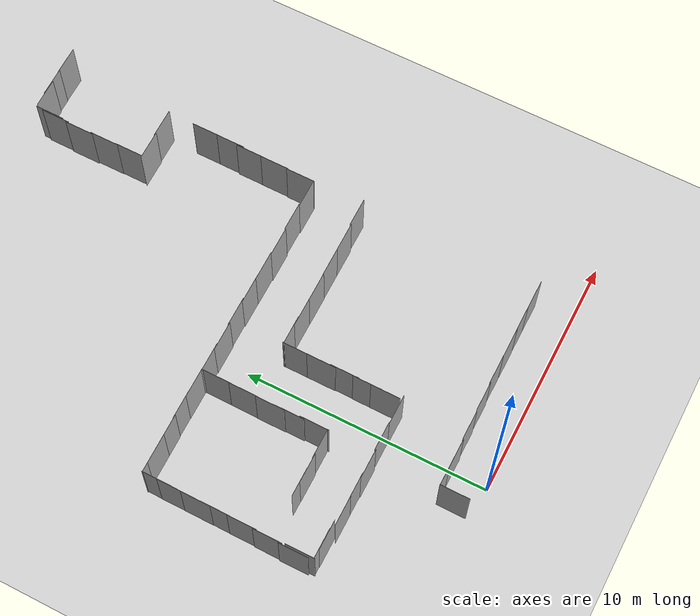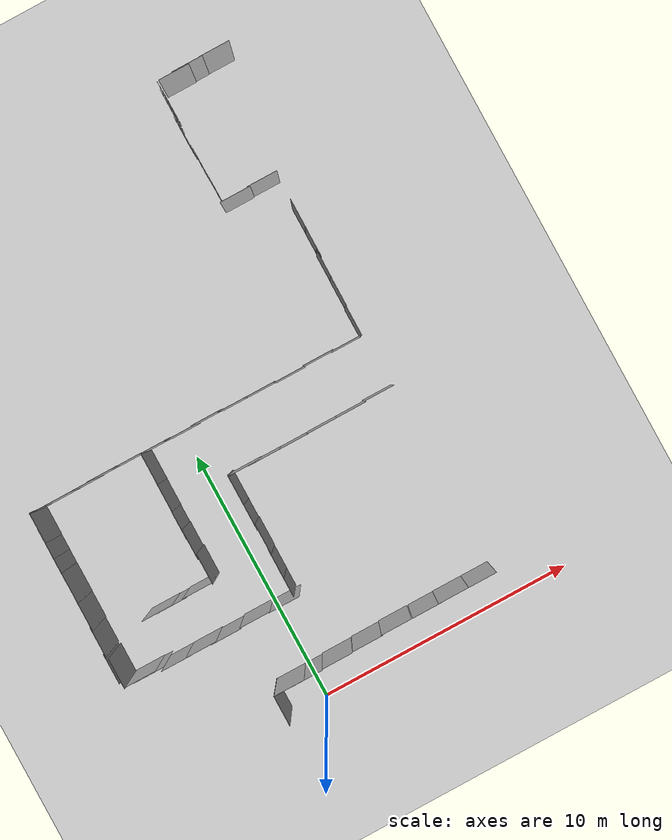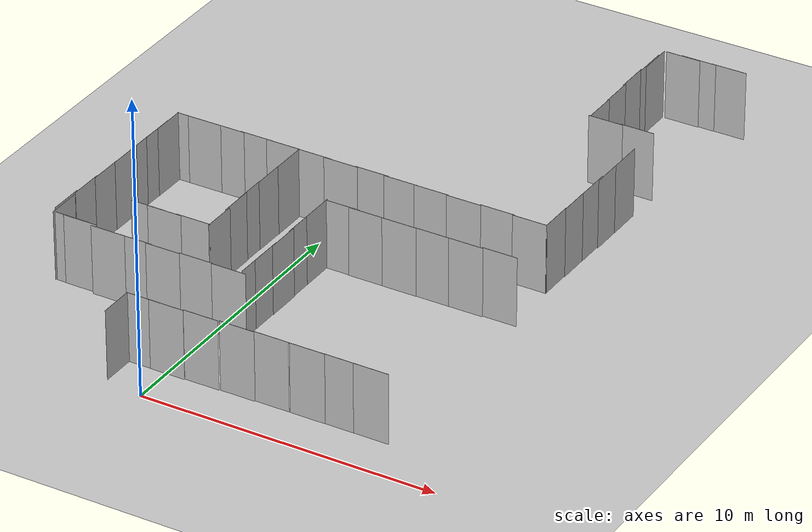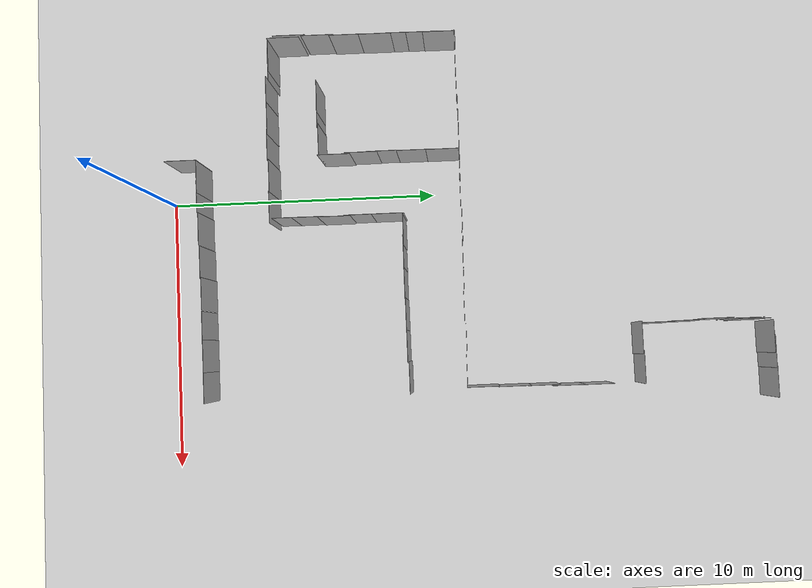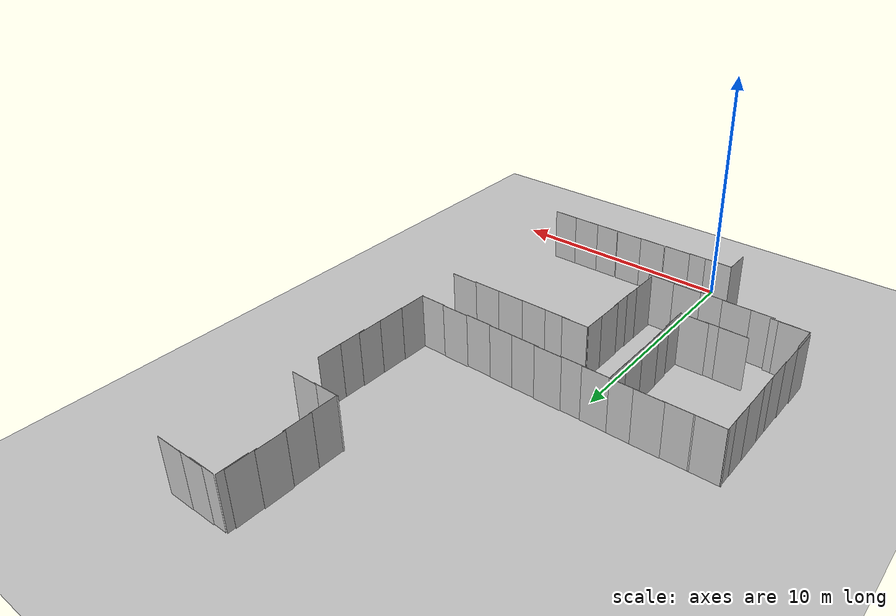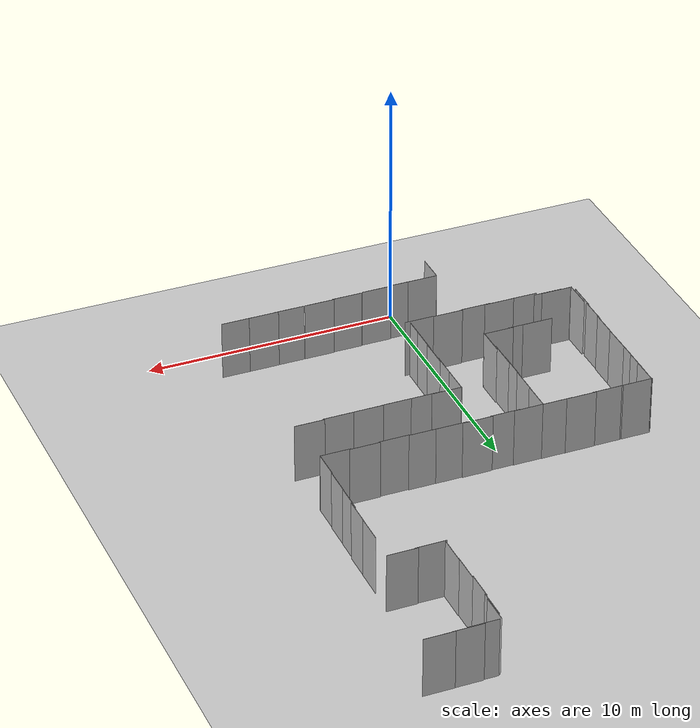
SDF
<sdf version="1.7">
 <world name="default">
  <model name="ground_plane">
   <static>1</static>
   <link name="link">
    <collision name="collision">
     <geometry><plane><normal>0 0 1</normal><size>100 100</size></plane></geometry>
     <surface><friction><ode><mu>100</mu><mu2>50</mu2></ode></friction></surface>
    </collision>
    <visual name="visual">
     <cast_shadows>0</cast_shadows>
     <geometry><plane><normal>0 0 1</normal><size>100 100</size></plane></geometry>
     <material>
      <script><uri>file://media/materials/scripts/gazebo.material</uri><name>Gazebo/Grey</name></script>
     </material>
    </visual>
   </link>
  </model>
  <model name="nist_maze_wall_240_clone_3_clone">
   <static>1</static>
   <link name="nist__maze_wall_240_link">
    <collision name="collision">
     <geometry>
      <mesh><uri>model://nist_maze_wall_240/meshes/nist_maze_wall_240.dae</uri><scale>1 1 1</scale></mesh>
     </geometry>
    </collision>
    <visual name="visual">
     <geometry>
      <mesh><uri>model://nist_maze_wall_240/meshes/nist_maze_wall_240.dae</uri><scale>1 1 1</scale></mesh>
     </geometry>
    </visual>
   </link>
   <pose>4.81247 0.895341 0 0 -0 0</pose>
  </model>
  <model name="nist_maze_wall_240_clone_3_clone_0">
   <static>1</static>
   <link name="nist__maze_wall_240_link">
    <collision name="collision">
     <geometry>
      <mesh><uri>model://nist_maze_wall_240/meshes/nist_maze_wall_240.dae</uri><scale>1 1 1</scale></mesh>
     </geometry>
    </collision>
    <visual name="visual">
     <geometry>
      <mesh><uri>model://nist_maze_wall_240/meshes/nist_maze_wall_240.dae</uri><scale>1 1 1</scale></mesh>
     </geometry>
    </visual>
   </link>
   <pose>3.58214 0.89717 0 0 -0 0</pose>
  </model>
  <model name="nist_maze_wall_240_clone_3_clone_1">
   <static>1</static>
   <link name="nist__maze_wall_240_link">
    <collision name="collision">
     <geometry>
      <mesh><uri>model://nist_maze_wall_240/meshes/nist_maze_wall_240.dae</uri><scale>1 1 1</scale></mesh>
     </geometry>
    </collision>
    <visual name="visual">
     <geometry>
      <mesh><uri>model://nist_maze_wall_240/meshes/nist_maze_wall_240.dae</uri><scale>1 1 1</scale></mesh>
     </geometry>
    </visual>
   </link>
   <pose>2.42888 0.869143 0 0 -0 0</pose>
  </model>
  <model name="nist_maze_wall_240_clone_3_clone_2">
   <static>1</static>
   <link name="nist__maze_wall_240_link">
    <collision name="collision">
     <geometry>
      <mesh><uri>model://nist_maze_wall_240/meshes/nist_maze_wall_240.dae</uri><scale>1 1 1</scale></mesh>
     </geometry>
    </collision>
    <visual name="visual">
     <geometry>
      <mesh><uri>model://nist_maze_wall_240/meshes/nist_maze_wall_240.dae</uri><scale>1 1 1</scale></mesh>
     </geometry>
    </visual>
   </link>
   <pose>1.20189 0.842766 0 0 -0 0</pose>
  </model>
  <model name="nist_maze_wall_240_clone_3_clone_3">
   <static>1</static>
   <link name="nist__maze_wall_240_link">
    <collision name="collision">
     <geometry>
      <mesh><uri>model://nist_maze_wall_240/meshes/nist_maze_wall_240.dae</uri><scale>1 1 1</scale></mesh>
     </geometry>
    </collision>
    <visual name="visual">
     <geometry>
      <mesh><uri>model://nist_maze_wall_240/meshes/nist_maze_wall_240.dae</uri><scale>1 1 1</scale></mesh>
     </geometry>
    </visual>
   </link>
   <pose>0.01872 0.809757 0 0 -0 0</pose>
  </model>
  <model name="nist_maze_wall_240_clone_3_clone_5_clone_clone_1">
   <static>1</static>
   <link name="nist__maze_wall_240_link">
    <collision name="collision">
     <geometry>
      <mesh><uri>model://nist_maze_wall_240/meshes/nist_maze_wall_240.dae</uri><scale>1 1 1</scale></mesh>
     </geometry>
    </collision>
    <visual name="visual">
     <geometry>
      <mesh><uri>model://nist_maze_wall_240/meshes/nist_maze_wall_240.dae</uri><scale>1 1 1</scale></mesh>
     </geometry>
    </visual>
   </link>
   <pose>-0.723012 0.833525 0 0 -0 1.57</pose>
  </model>
  <model name="nist_maze_wall_240_clone_3_clone_3_clone">
   <static>1</static>
   <link name="nist__maze_wall_240_link">
    <collision name="collision">
     <geometry>
      <mesh><uri>model://nist_maze_wall_240/meshes/nist_maze_wall_240.dae</uri><scale>1 1 1</scale></mesh>
     </geometry>
    </collision>
    <visual name="visual">
     <geometry>
      <mesh><uri>model://nist_maze_wall_240/meshes/nist_maze_wall_240.dae</uri><scale>1 1 1</scale></mesh>
     </geometry>
    </visual>
   </link>
   <pose>-0.72561 0.815595 0 0 -0 0</pose>
  </model>
  <model name="nist_maze_wall_240_clone_3_clone_7">
   <static>1</static>
   <link name="nist__maze_wall_240_link">
    <collision name="collision">
     <geometry>
      <mesh><uri>model://nist_maze_wall_240/meshes/nist_maze_wall_240.dae</uri><scale>1 1 1</scale></mesh>
     </geometry>
    </collision>
    <visual name="visual">
     <geometry>
      <mesh><uri>model://nist_maze_wall_240/meshes/nist_maze_wall_240.dae</uri><scale>1 1 1</scale></mesh>
     </geometry>
    </visual>
   </link>
   <pose>5.85153 0.903553 0 0 -0 0</pose>
  </model>
  <model name="nist_maze_wall_240_clone_3_clone_9">
   <static>1</static>
   <link name="nist__maze_wall_240_link">
    <collision name="collision">
     <geometry>
      <mesh><uri>model://nist_maze_wall_240/meshes/nist_maze_wall_240.dae</uri><scale>1 1 1</scale></mesh>
     </geometry>
    </collision>
    <visual name="visual">
     <geometry>
      <mesh><uri>model://nist_maze_wall_240/meshes/nist_maze_wall_240.dae</uri><scale>1 1 1</scale></mesh>
     </geometry>
    </visual>
   </link>
   <pose>6.95954 0.902745 0 0 -0 0</pose>
  </model>
  <model name="nist_maze_wall_240_clone_3_clone_5_clone_clone_0_clone_22">
   <static>1</static>
   <link name="nist__maze_wall_240_link">
    <collision name="collision">
     <geometry>
      <mesh><uri>model://nist_maze_wall_240/meshes/nist_maze_wall_240.dae</uri><scale>1 1 1</scale></mesh>
     </geometry>
    </collision>
    <visual name="visual">
     <geometry>
      <mesh><uri>model://nist_maze_wall_240/meshes/nist_maze_wall_240.dae</uri><scale>1 1 1</scale></mesh>
     </geometry>
    </visual>
   </link>
   <pose>7.9823 11.5903 0 0 -0 1.57</pose>
  </model>
  <model name="nist_maze_wall_240_clone_3_clone_5_clone_clone_0_clone_23">
   <static>1</static>
   <link name="nist__maze_wall_240_link">
    <collision name="collision">
     <geometry>
      <mesh><uri>model://nist_maze_wall_240/meshes/nist_maze_wall_240.dae</uri><scale>1 1 1</scale></mesh>
     </geometry>
    </collision>
    <visual name="visual">
     <geometry>
      <mesh><uri>model://nist_maze_wall_240/meshes/nist_maze_wall_240.dae</uri><scale>1 1 1</scale></mesh>
     </geometry>
    </visual>
   </link>
   <pose>8.00611 12.7339 0 0 -0 1.57</pose>
  </model>
  <model name="nist_maze_wall_240_clone_3_clone_5_clone_clone_0_clone_24">
   <static>1</static>
   <link name="nist__maze_wall_240_link">
    <collision name="collision">
     <geometry>
      <mesh><uri>model://nist_maze_wall_240/meshes/nist_maze_wall_240.dae</uri><scale>1 1 1</scale></mesh>
     </geometry>
    </collision>
    <visual name="visual">
     <geometry>
      <mesh><uri>model://nist_maze_wall_240/meshes/nist_maze_wall_240.dae</uri><scale>1 1 1</scale></mesh>
     </geometry>
    </visual>
   </link>
   <pose>8.01532 13.802 0 0 -0 1.57</pose>
  </model>
  <model name="nist_maze_wall_240_clone_3_clone_5_clone_clone_0_clone_25">
   <static>1</static>
   <link name="nist__maze_wall_240_link">
    <collision name="collision">
     <geometry>
      <mesh><uri>model://nist_maze_wall_240/meshes/nist_maze_wall_240.dae</uri><scale>1 1 1</scale></mesh>
     </geometry>
    </collision>
    <visual name="visual">
     <geometry>
      <mesh><uri>model://nist_maze_wall_240/meshes/nist_maze_wall_240.dae</uri><scale>1 1 1</scale></mesh>
     </geometry>
    </visual>
   </link>
   <pose>8.05576 14.6906 0 0 -0 1.57</pose>
  </model>
  <model name="nist_maze_wall_240_clone_3_clone_5_clone_clone_0_clone_10_clone_1_clone_2_clone_4">
   <static>1</static>
   <link name="nist__maze_wall_240_link">
    <collision name="collision">
     <geometry>
      <mesh><uri>model://nist_maze_wall_240/meshes/nist_maze_wall_240.dae</uri><scale>1 1 1</scale></mesh>
     </geometry>
    </collision>
    <visual name="visual">
     <geometry>
      <mesh><uri>model://nist_maze_wall_240/meshes/nist_maze_wall_240.dae</uri><scale>1 1 1</scale></mesh>
     </geometry>
    </visual>
   </link>
   <pose>8.06248 15.749 0 0 -0 1.57</pose>
  </model>
  <model name="nist_maze_wall_240_clone_3_clone_9_clone_clone">
   <static>1</static>
   <link name="nist__maze_wall_240_link">
    <collision name="collision">
     <geometry>
      <mesh><uri>model://nist_maze_wall_240/meshes/nist_maze_wall_240.dae</uri><scale>1 1 1</scale></mesh>
     </geometry>
    </collision>
    <visual name="visual">
     <geometry>
      <mesh><uri>model://nist_maze_wall_240/meshes/nist_maze_wall_240.dae</uri><scale>1 1 1</scale></mesh>
     </geometry>
    </visual>
   </link>
   <pose>6.93079 16.8427 0 0 -0 0</pose>
  </model>
  <model name="nist_maze_wall_240_clone_3_clone_9_clone_clone_0">
   <static>1</static>
   <link name="nist__maze_wall_240_link">
    <collision name="collision">
     <geometry>
      <mesh><uri>model://nist_maze_wall_240/meshes/nist_maze_wall_240.dae</uri><scale>1 1 1</scale></mesh>
     </geometry>
    </collision>
    <visual name="visual">
     <geometry>
      <mesh><uri>model://nist_maze_wall_240/meshes/nist_maze_wall_240.dae</uri><scale>1 1 1</scale></mesh>
     </geometry>
    </visual>
   </link>
   <pose>5.85112 16.8134 0 0 -0 0</pose>
  </model>
  <model name="nist_maze_wall_240_clone_3_clone_5_clone_clone_0_clone_10_clone_1_clone_2_clone_1_clone">
   <static>1</static>
   <link name="nist__maze_wall_240_link">
    <collision name="collision">
     <geometry>
      <mesh><uri>model://nist_maze_wall_240/meshes/nist_maze_wall_240.dae</uri><scale>1 1 1</scale></mesh>
     </geometry>
    </collision>
    <visual name="visual">
     <geometry>
      <mesh><uri>model://nist_maze_wall_240/meshes/nist_maze_wall_240.dae</uri><scale>1 1 1</scale></mesh>
     </geometry>
    </visual>
   </link>
   <pose>5.91994 18.016 0 0 -0 1.57</pose>
  </model>
  <model name="nist_maze_wall_240_clone_3_clone_5_clone_clone_0_clone_10_clone_1_clone_2_clone_1_clone_0">
   <static>1</static>
   <link name="nist__maze_wall_240_link">
    <collision name="collision">
     <geometry>
      <mesh><uri>model://nist_maze_wall_240/meshes/nist_maze_wall_240.dae</uri><scale>1 1 1</scale></mesh>
     </geometry>
    </collision>
    <visual name="visual">
     <geometry>
      <mesh><uri>model://nist_maze_wall_240/meshes/nist_maze_wall_240.dae</uri><scale>1 1 1</scale></mesh>
     </geometry>
    </visual>
   </link>
   <pose>5.90332 19.1026 0 0 -0 1.57</pose>
  </model>
  <model name="nist_maze_wall_240_clone_3_clone_5_clone_clone_0_clone_10_clone_1_clone_2_clone_1_clone_1">
   <static>1</static>
   <link name="nist__maze_wall_240_link">
    <collision name="collision">
     <geometry>
      <mesh><uri>model://nist_maze_wall_240/meshes/nist_maze_wall_240.dae</uri><scale>1 1 1</scale></mesh>
     </geometry>
    </collision>
    <visual name="visual">
     <geometry>
      <mesh><uri>model://nist_maze_wall_240/meshes/nist_maze_wall_240.dae</uri><scale>1 1 1</scale></mesh>
     </geometry>
    </visual>
   </link>
   <pose>5.86707 20.2028 0 0 -0 1.57</pose>
  </model>
  <model name="nist_maze_wall_240_clone_3_clone_5_clone_clone_0_clone_10_clone_1_clone_2_clone_1_clone_2">
   <static>1</static>
   <link name="nist__maze_wall_240_link">
    <collision name="collision">
     <geometry>
      <mesh><uri>model://nist_maze_wall_240/meshes/nist_maze_wall_240.dae</uri><scale>1 1 1</scale></mesh>
     </geometry>
    </collision>
    <visual name="visual">
     <geometry>
      <mesh><uri>model://nist_maze_wall_240/meshes/nist_maze_wall_240.dae</uri><scale>1 1 1</scale></mesh>
     </geometry>
    </visual>
   </link>
   <pose>5.90291 21.2799 0 0 -0 1.57</pose>
  </model>
  <model name="nist_maze_wall_240_clone_3_clone_9_clone_clone_7">
   <static>1</static>
   <link name="nist__maze_wall_240_link">
    <collision name="collision">
     <geometry>
      <mesh><uri>model://nist_maze_wall_240/meshes/nist_maze_wall_240.dae</uri><scale>1 1 1</scale></mesh>
     </geometry>
    </collision>
    <visual name="visual">
     <geometry>
      <mesh><uri>model://nist_maze_wall_240/meshes/nist_maze_wall_240.dae</uri><scale>1 1 1</scale></mesh>
     </geometry>
    </visual>
   </link>
   <pose>7.62753 21.6142 0 0 -0 0</pose>
  </model>
  <model name="nist_maze_wall_240_clone_3_clone_9_clone_clone_8">
   <static>1</static>
   <link name="nist__maze_wall_240_link">
    <collision name="collision">
     <geometry>
      <mesh><uri>model://nist_maze_wall_240/meshes/nist_maze_wall_240.dae</uri><scale>1 1 1</scale></mesh>
     </geometry>
    </collision>
    <visual name="visual">
     <geometry>
      <mesh><uri>model://nist_maze_wall_240/meshes/nist_maze_wall_240.dae</uri><scale>1 1 1</scale></mesh>
     </geometry>
    </visual>
   </link>
   <pose>6.55753 21.6023 0 0 -0 0</pose>
  </model>
  <model name="nist_maze_wall_240_clone_3_clone_9_clone_clone_9">
   <static>1</static>
   <link name="nist__maze_wall_240_link">
    <collision name="collision">
     <geometry>
      <mesh><uri>model://nist_maze_wall_240/meshes/nist_maze_wall_240.dae</uri><scale>1 1 1</scale></mesh>
     </geometry>
    </collision>
    <visual name="visual">
     <geometry>
      <mesh><uri>model://nist_maze_wall_240/meshes/nist_maze_wall_240.dae</uri><scale>1 1 1</scale></mesh>
     </geometry>
    </visual>
   </link>
   <pose>6.00679 21.5748 0 0 -0 0</pose>
  </model>
  <model name="nist_maze_wall_240_clone_3_clone_5_clone_clone_0_clone_10_clone_1_clone_2_clone_1_clone_2_clone">
   <static>1</static>
   <link name="nist__maze_wall_240_link">
    <collision name="collision">
     <geometry>
      <mesh><uri>model://nist_maze_wall_240/meshes/nist_maze_wall_240.dae</uri><scale>1 1 1</scale></mesh>
     </geometry>
    </collision>
    <visual name="visual">
     <geometry>
      <mesh><uri>model://nist_maze_wall_240/meshes/nist_maze_wall_240.dae</uri><scale>1 1 1</scale></mesh>
     </geometry>
    </visual>
   </link>
   <pose>5.94204 21.5703 0 0 -0 1.57</pose>
  </model>
  <model name="nist_maze_wall_240_clone_3_clone_9_clone_clone_clone">
   <static>1</static>
   <link name="nist__maze_wall_240_link">
    <collision name="collision">
     <geometry>
      <mesh><uri>model://nist_maze_wall_240/meshes/nist_maze_wall_240.dae</uri><scale>1 1 1</scale></mesh>
     </geometry>
    </collision>
    <visual name="visual">
     <geometry>
      <mesh><uri>model://nist_maze_wall_240/meshes/nist_maze_wall_240.dae</uri><scale>1 1 1</scale></mesh>
     </geometry>
    </visual>
   </link>
   <pose>6.95498 8.33223 0 0 -0 0</pose>
  </model>
  <model name="nist_maze_wall_240_clone_3_clone_9_clone_clone_clone_0">
   <static>1</static>
   <link name="nist__maze_wall_240_link">
    <collision name="collision">
     <geometry>
      <mesh><uri>model://nist_maze_wall_240/meshes/nist_maze_wall_240.dae</uri><scale>1 1 1</scale></mesh>
     </geometry>
    </collision>
    <visual name="visual">
     <geometry>
      <mesh><uri>model://nist_maze_wall_240/meshes/nist_maze_wall_240.dae</uri><scale>1 1 1</scale></mesh>
     </geometry>
    </visual>
   </link>
   <pose>6.79776 10.4139 0 0 -0 0</pose>
  </model>
  <model name="nist_maze_wall_240_clone_3_clone_9_clone_clone_clone_1">
   <static>1</static>
   <link name="nist__maze_wall_240_link">
    <collision name="collision">
     <geometry>
      <mesh><uri>model://nist_maze_wall_240/meshes/nist_maze_wall_240.dae</uri><scale>1 1 1</scale></mesh>
     </geometry>
    </collision>
    <visual name="visual">
     <geometry>
      <mesh><uri>model://nist_maze_wall_240/meshes/nist_maze_wall_240.dae</uri><scale>1 1 1</scale></mesh>
     </geometry>
    </visual>
   </link>
   <pose>5.81001 8.29007 0 0 -0 0</pose>
  </model>
  <model name="nist_maze_wall_240_clone_3_clone_9_clone_clone_clone_2">
   <static>1</static>
   <link name="nist__maze_wall_240_link">
    <collision name="collision">
     <geometry>
      <mesh><uri>model://nist_maze_wall_240/meshes/nist_maze_wall_240.dae</uri><scale>1 1 1</scale></mesh>
     </geometry>
    </collision>
    <visual name="visual">
     <geometry>
      <mesh><uri>model://nist_maze_wall_240/meshes/nist_maze_wall_240.dae</uri><scale>1 1 1</scale></mesh>
     </geometry>
    </visual>
   </link>
   <pose>5.66573 10.4459 0 0 -0 0</pose>
  </model>
  <model name="nist_maze_wall_240_clone_3_clone_9_clone_clone_clone_3">
   <static>1</static>
   <link name="nist__maze_wall_240_link">
    <collision name="collision">
     <geometry>
      <mesh><uri>model://nist_maze_wall_240/meshes/nist_maze_wall_240.dae</uri><scale>1 1 1</scale></mesh>
     </geometry>
    </collision>
    <visual name="visual">
     <geometry>
      <mesh><uri>model://nist_maze_wall_240/meshes/nist_maze_wall_240.dae</uri><scale>1 1 1</scale></mesh>
     </geometry>
    </visual>
   </link>
   <pose>4.63096 8.28752 0 0 -0 0</pose>
  </model>
  <model name="nist_maze_wall_240_clone_3_clone_9_clone_clone_clone_4">
   <static>1</static>
   <link name="nist__maze_wall_240_link">
    <collision name="collision">
     <geometry>
      <mesh><uri>model://nist_maze_wall_240/meshes/nist_maze_wall_240.dae</uri><scale>1 1 1</scale></mesh>
     </geometry>
    </collision>
    <visual name="visual">
     <geometry>
      <mesh><uri>model://nist_maze_wall_240/meshes/nist_maze_wall_240.dae</uri><scale>1 1 1</scale></mesh>
     </geometry>
    </visual>
   </link>
   <pose>4.50118 10.4087 0 0 -0 0</pose>
  </model>
  <model name="nist_maze_wall_240_clone_3_clone_9_clone_clone_clone_5">
   <static>1</static>
   <link name="nist__maze_wall_240_link">
    <collision name="collision">
     <geometry>
      <mesh><uri>model://nist_maze_wall_240/meshes/nist_maze_wall_240.dae</uri><scale>1 1 1</scale></mesh>
     </geometry>
    </collision>
    <visual name="visual">
     <geometry>
      <mesh><uri>model://nist_maze_wall_240/meshes/nist_maze_wall_240.dae</uri><scale>1 1 1</scale></mesh>
     </geometry>
    </visual>
   </link>
   <pose>3.5077 8.27573 0 0 -0 0</pose>
  </model>
  <model name="nist_maze_wall_240_clone_3_clone_9_clone_clone_clone_6">
   <static>1</static>
   <link name="nist__maze_wall_240_link">
    <collision name="collision">
     <geometry>
      <mesh><uri>model://nist_maze_wall_240/meshes/nist_maze_wall_240.dae</uri><scale>1 1 1</scale></mesh>
     </geometry>
    </collision>
    <visual name="visual">
     <geometry>
      <mesh><uri>model://nist_maze_wall_240/meshes/nist_maze_wall_240.dae</uri><scale>1 1 1</scale></mesh>
     </geometry>
    </visual>
   </link>
   <pose>3.34964 10.4376 0 0 -0 0</pose>
  </model>
  <model name="nist_maze_wall_240_clone_3_clone_9_clone_clone_clone_7">
   <static>1</static>
   <link name="nist__maze_wall_240_link">
    <collision name="collision">
     <geometry>
      <mesh><uri>model://nist_maze_wall_240/meshes/nist_maze_wall_240.dae</uri><scale>1 1 1</scale></mesh>
     </geometry>
    </collision>
    <visual name="visual">
     <geometry>
      <mesh><uri>model://nist_maze_wall_240/meshes/nist_maze_wall_240.dae</uri><scale>1 1 1</scale></mesh>
     </geometry>
    </visual>
   </link>
   <pose>2.33539 8.28027 0 0 -0 0</pose>
  </model>
  <model name="nist_maze_wall_240_clone_3_clone_9_clone_clone_clone_8">
   <static>1</static>
   <link name="nist__maze_wall_240_link">
    <collision name="collision">
     <geometry>
      <mesh><uri>model://nist_maze_wall_240/meshes/nist_maze_wall_240.dae</uri><scale>1 1 1</scale></mesh>
     </geometry>
    </collision>
    <visual name="visual">
     <geometry>
      <mesh><uri>model://nist_maze_wall_240/meshes/nist_maze_wall_240.dae</uri><scale>1 1 1</scale></mesh>
     </geometry>
    </visual>
   </link>
   <pose>2.28413 10.4433 0 0 -0 0</pose>
  </model>
  <model name="nist_maze_wall_240_clone_3_clone_9_clone_clone_clone_9">
   <static>1</static>
   <link name="nist__maze_wall_240_link">
    <collision name="collision">
     <geometry>
      <mesh><uri>model://nist_maze_wall_240/meshes/nist_maze_wall_240.dae</uri><scale>1 1 1</scale></mesh>
     </geometry>
    </collision>
    <visual name="visual">
     <geometry>
      <mesh><uri>model://nist_maze_wall_240/meshes/nist_maze_wall_240.dae</uri><scale>1 1 1</scale></mesh>
     </geometry>
    </visual>
   </link>
   <pose>1.24391 10.4708 0 0 -0 0</pose>
  </model>
  <model name="nist_maze_wall_240_clone_3_clone_9_clone_clone_clone_10">
   <static>1</static>
   <link name="nist__maze_wall_240_link">
    <collision name="collision">
     <geometry>
      <mesh><uri>model://nist_maze_wall_240/meshes/nist_maze_wall_240.dae</uri><scale>1 1 1</scale></mesh>
     </geometry>
    </collision>
    <visual name="visual">
     <geometry>
      <mesh><uri>model://nist_maze_wall_240/meshes/nist_maze_wall_240.dae</uri><scale>1 1 1</scale></mesh>
     </geometry>
    </visual>
   </link>
   <pose>0.140024 10.4433 0 0 -0 0</pose>
  </model>
  <model name="nist_maze_wall_240_clone_3_clone_9_clone_clone_clone_11">
   <static>1</static>
   <link name="nist__maze_wall_240_link">
    <collision name="collision">
     <geometry>
      <mesh><uri>model://nist_maze_wall_240/meshes/nist_maze_wall_240.dae</uri><scale>1 1 1</scale></mesh>
     </geometry>
    </collision>
    <visual name="visual">
     <geometry>
      <mesh><uri>model://nist_maze_wall_240/meshes/nist_maze_wall_240.dae</uri><scale>1 1 1</scale></mesh>
     </geometry>
    </visual>
   </link>
   <pose>-0.808674 10.4629 0 0 -0 0</pose>
  </model>
  <model name="nist_maze_wall_240_clone_3_clone_5_clone_clone_0_clone_20_clone">
   <static>1</static>
   <link name="nist__maze_wall_240_link">
    <collision name="collision">
     <geometry>
      <mesh><uri>model://nist_maze_wall_240/meshes/nist_maze_wall_240.dae</uri><scale>1 1 1</scale></mesh>
     </geometry>
    </collision>
    <visual name="visual">
     <geometry>
      <mesh><uri>model://nist_maze_wall_240/meshes/nist_maze_wall_240.dae</uri><scale>1 1 1</scale></mesh>
     </geometry>
    </visual>
   </link>
   <pose>-0.753557 10.4418 0 0 -0 1.57</pose>
  </model>
  <model name="nist_maze_wall_240_clone_3_clone_5_clone_clone_0_clone_20_clone_0">
   <static>1</static>
   <link name="nist__maze_wall_240_link">
    <collision name="collision">
     <geometry>
      <mesh><uri>model://nist_maze_wall_240/meshes/nist_maze_wall_240.dae</uri><scale>1 1 1</scale></mesh>
     </geometry>
    </collision>
    <visual name="visual">
     <geometry>
      <mesh><uri>model://nist_maze_wall_240/meshes/nist_maze_wall_240.dae</uri><scale>1 1 1</scale></mesh>
     </geometry>
    </visual>
   </link>
   <pose>-0.762022 9.36206 0 0 -0 1.57</pose>
  </model>
  <model name="nist_maze_wall_240_clone_3_clone_5_clone_clone_0_clone_20_clone_1">
   <static>1</static>
   <link name="nist__maze_wall_240_link">
    <collision name="collision">
     <geometry>
      <mesh><uri>model://nist_maze_wall_240/meshes/nist_maze_wall_240.dae</uri><scale>1 1 1</scale></mesh>
     </geometry>
    </collision>
    <visual name="visual">
     <geometry>
      <mesh><uri>model://nist_maze_wall_240/meshes/nist_maze_wall_240.dae</uri><scale>1 1 1</scale></mesh>
     </geometry>
    </visual>
   </link>
   <pose>-0.775326 8.24913 0 0 -0 1.57</pose>
  </model>
  <model name="nist_maze_wall_240_clone_3_clone_5_clone_clone_0_clone_20_clone_2">
   <static>1</static>
   <link name="nist__maze_wall_240_link">
    <collision name="collision">
     <geometry>
      <mesh><uri>model://nist_maze_wall_240/meshes/nist_maze_wall_240.dae</uri><scale>1 1 1</scale></mesh>
     </geometry>
    </collision>
    <visual name="visual">
     <geometry>
      <mesh><uri>model://nist_maze_wall_240/meshes/nist_maze_wall_240.dae</uri><scale>1 1 1</scale></mesh>
     </geometry>
    </visual>
   </link>
   <pose>1.54043 8.35613 0 0 -0 1.57</pose>
  </model>
  <model name="nist_maze_wall_240_clone_3_clone_5_clone_clone_0_clone_20_clone_3">
   <static>1</static>
   <link name="nist__maze_wall_240_link">
    <collision name="collision">
     <geometry>
      <mesh><uri>model://nist_maze_wall_240/meshes/nist_maze_wall_240.dae</uri><scale>1 1 1</scale></mesh>
     </geometry>
    </collision>
    <visual name="visual">
     <geometry>
      <mesh><uri>model://nist_maze_wall_240/meshes/nist_maze_wall_240.dae</uri><scale>1 1 1</scale></mesh>
     </geometry>
    </visual>
   </link>
   <pose>1.53946 7.3583 0 0 -0 1.57</pose>
  </model>
  <model name="nist_maze_wall_240_clone_3_clone_5_clone_clone_0_clone_20_clone_4">
   <static>1</static>
   <link name="nist__maze_wall_240_link">
    <collision name="collision">
     <geometry>
      <mesh><uri>model://nist_maze_wall_240/meshes/nist_maze_wall_240.dae</uri><scale>1 1 1</scale></mesh>
     </geometry>
    </collision>
    <visual name="visual">
     <geometry>
      <mesh><uri>model://nist_maze_wall_240/meshes/nist_maze_wall_240.dae</uri><scale>1 1 1</scale></mesh>
     </geometry>
    </visual>
   </link>
   <pose>-0.76059 7.44913 0 0 -0 1.57</pose>
  </model>
  <model name="nist_maze_wall_240_clone_3_clone_5_clone_clone_0_clone_20_clone_5">
   <static>1</static>
   <link name="nist__maze_wall_240_link">
    <collision name="collision">
     <geometry>
      <mesh><uri>model://nist_maze_wall_240/meshes/nist_maze_wall_240.dae</uri><scale>1 1 1</scale></mesh>
     </geometry>
    </collision>
    <visual name="visual">
     <geometry>
      <mesh><uri>model://nist_maze_wall_240/meshes/nist_maze_wall_240.dae</uri><scale>1 1 1</scale></mesh>
     </geometry>
    </visual>
   </link>
   <pose>1.56327 6.39415 0 0 -0 1.57</pose>
  </model>
  <model name="nist_maze_wall_240_clone_3_clone_5_clone_clone_0_clone_20_clone_6">
   <static>1</static>
   <link name="nist__maze_wall_240_link">
    <collision name="collision">
     <geometry>
      <mesh><uri>model://nist_maze_wall_240/meshes/nist_maze_wall_240.dae</uri><scale>1 1 1</scale></mesh>
     </geometry>
    </collision>
    <visual name="visual">
     <geometry>
      <mesh><uri>model://nist_maze_wall_240/meshes/nist_maze_wall_240.dae</uri><scale>1 1 1</scale></mesh>
     </geometry>
    </visual>
   </link>
   <pose>-0.72293 6.45582 0 0 -0 1.57</pose>
  </model>
  <model name="nist_maze_wall_240_clone_3_clone_9_clone_clone_clone_3_clone">
   <static>1</static>
   <link name="nist__maze_wall_240_link">
    <collision name="collision">
     <geometry>
      <mesh><uri>model://nist_maze_wall_240/meshes/nist_maze_wall_240.dae</uri><scale>1 1 1</scale></mesh>
     </geometry>
    </collision>
    <visual name="visual">
     <geometry>
      <mesh><uri>model://nist_maze_wall_240/meshes/nist_maze_wall_240.dae</uri><scale>1 1 1</scale></mesh>
     </geometry>
    </visual>
   </link>
   <pose>1.51921 8.3011 0 0 -0 0</pose>
  </model>
  <model name="nist_maze_wall_240_clone_3_clone_9_clone_clone_clone_3_clone_0">
   <static>1</static>
   <link name="nist__maze_wall_240_link">
    <collision name="collision">
     <geometry>
      <mesh><uri>model://nist_maze_wall_240/meshes/nist_maze_wall_240.dae</uri><scale>1 1 1</scale></mesh>
     </geometry>
    </collision>
    <visual name="visual">
     <geometry>
      <mesh><uri>model://nist_maze_wall_240/meshes/nist_maze_wall_240.dae</uri><scale>1 1 1</scale></mesh>
     </geometry>
    </visual>
   </link>
   <pose>0.517386 3.44824 0 0 -0 0</pose>
  </model>
  <model name="nist_maze_wall_240_clone_3_clone_9_clone_clone_clone_3_clone_1">
   <static>1</static>
   <link name="nist__maze_wall_240_link">
    <collision name="collision">
     <geometry>
      <mesh><uri>model://nist_maze_wall_240/meshes/nist_maze_wall_240.dae</uri><scale>1 1 1</scale></mesh>
     </geometry>
    </collision>
    <visual name="visual">
     <geometry>
      <mesh><uri>model://nist_maze_wall_240/meshes/nist_maze_wall_240.dae</uri><scale>1 1 1</scale></mesh>
     </geometry>
    </visual>
   </link>
   <pose>-0.642248 3.47087 0 0 -0 0</pose>
  </model>
  <model name="nist_maze_wall_240_clone_3_clone_9_clone_clone_clone_3_clone_2">
   <static>1</static>
   <link name="nist__maze_wall_240_link">
    <collision name="collision">
     <geometry>
      <mesh><uri>model://nist_maze_wall_240/meshes/nist_maze_wall_240.dae</uri><scale>1 1 1</scale></mesh>
     </geometry>
    </collision>
    <visual name="visual">
     <geometry>
      <mesh><uri>model://nist_maze_wall_240/meshes/nist_maze_wall_240.dae</uri><scale>1 1 1</scale></mesh>
     </geometry>
    </visual>
   </link>
   <pose>-1.79274 3.43343 0 0 -0 0</pose>
  </model>
  <model name="nist_maze_wall_240_clone_3_clone_9_clone_clone_clone_3_clone_3">
   <static>1</static>
   <link name="nist__maze_wall_240_link">
    <collision name="collision">
     <geometry>
      <mesh><uri>model://nist_maze_wall_240/meshes/nist_maze_wall_240.dae</uri><scale>1 1 1</scale></mesh>
     </geometry>
    </collision>
    <visual name="visual">
     <geometry>
      <mesh><uri>model://nist_maze_wall_240/meshes/nist_maze_wall_240.dae</uri><scale>1 1 1</scale></mesh>
     </geometry>
    </visual>
   </link>
   <pose>-2.7788 3.45615 0 0 -0 0</pose>
  </model>
  <model name="nist_maze_wall_240_clone_3_clone_9_clone_clone_clone_3_clone_4">
   <static>1</static>
   <link name="nist__maze_wall_240_link">
    <collision name="collision">
     <geometry>
      <mesh><uri>model://nist_maze_wall_240/meshes/nist_maze_wall_240.dae</uri><scale>1 1 1</scale></mesh>
     </geometry>
    </collision>
    <visual name="visual">
     <geometry>
      <mesh><uri>model://nist_maze_wall_240/meshes/nist_maze_wall_240.dae</uri><scale>1 1 1</scale></mesh>
     </geometry>
    </visual>
   </link>
   <pose>-3.7505 3.45039 0 0 -0 0</pose>
  </model>
  <model name="nist_maze_wall_240_clone_3_clone_5_clone_clone_0_clone_20_clone_5_clone">
   <static>1</static>
   <link name="nist__maze_wall_240_link">
    <collision name="collision">
     <geometry>
      <mesh><uri>model://nist_maze_wall_240/meshes/nist_maze_wall_240.dae</uri><scale>1 1 1</scale></mesh>
     </geometry>
    </collision>
    <visual name="visual">
     <geometry>
      <mesh><uri>model://nist_maze_wall_240/meshes/nist_maze_wall_240.dae</uri><scale>1 1 1</scale></mesh>
     </geometry>
    </visual>
   </link>
   <pose>1.54676 5.44993 0 0 -0 1.57</pose>
  </model>
  <model name="nist_maze_wall_240_clone_3_clone_5_clone_clone_0_clone_20_clone_5_clone_0">
   <static>1</static>
   <link name="nist__maze_wall_240_link">
    <collision name="collision">
     <geometry>
      <mesh><uri>model://nist_maze_wall_240/meshes/nist_maze_wall_240.dae</uri><scale>1 1 1</scale></mesh>
     </geometry>
    </collision>
    <visual name="visual">
     <geometry>
      <mesh><uri>model://nist_maze_wall_240/meshes/nist_maze_wall_240.dae</uri><scale>1 1 1</scale></mesh>
     </geometry>
    </visual>
   </link>
   <pose>1.5417 4.71685 0 0 -0 1.57</pose>
  </model>
  <model name="nist_maze_wall_240_clone_3_clone_9_clone_clone_clone_3_clone_2_clone">
   <static>1</static>
   <link name="nist__maze_wall_240_link">
    <collision name="collision">
     <geometry>
      <mesh><uri>model://nist_maze_wall_240/meshes/nist_maze_wall_240.dae</uri><scale>1 1 1</scale></mesh>
     </geometry>
    </collision>
    <visual name="visual">
     <geometry>
      <mesh><uri>model://nist_maze_wall_240/meshes/nist_maze_wall_240.dae</uri><scale>1 1 1</scale></mesh>
     </geometry>
    </visual>
   </link>
   <pose>-1.91642 5.31571 0 0 -0 0</pose>
  </model>
  <model name="nist_maze_wall_240_clone_3_clone_9_clone_clone_clone_3_clone_2_clone_0">
   <static>1</static>
   <link name="nist__maze_wall_240_link">
    <collision name="collision">
     <geometry>
      <mesh><uri>model://nist_maze_wall_240/meshes/nist_maze_wall_240.dae</uri><scale>1 1 1</scale></mesh>
     </geometry>
    </collision>
    <visual name="visual">
     <geometry>
      <mesh><uri>model://nist_maze_wall_240/meshes/nist_maze_wall_240.dae</uri><scale>1 1 1</scale></mesh>
     </geometry>
    </visual>
   </link>
   <pose>-2.93322 5.29214 0 0 -0 0</pose>
  </model>
  <model name="nist_maze_wall_240_clone_3_clone_9_clone_clone_clone_3_clone_2_clone_1">
   <static>1</static>
   <link name="nist__maze_wall_240_link">
    <collision name="collision">
     <geometry>
      <mesh><uri>model://nist_maze_wall_240/meshes/nist_maze_wall_240.dae</uri><scale>1 1 1</scale></mesh>
     </geometry>
    </collision>
    <visual name="visual">
     <geometry>
      <mesh><uri>model://nist_maze_wall_240/meshes/nist_maze_wall_240.dae</uri><scale>1 1 1</scale></mesh>
     </geometry>
    </visual>
   </link>
   <pose>-3.52319 5.30211 0 0 -0 0</pose>
  </model>
  <model name="nist_maze_wall_240_clone_3_clone_5_clone_clone_0_clone_20_clone_5_clone_0_clone">
   <static>1</static>
   <link name="nist__maze_wall_240_link">
    <collision name="collision">
     <geometry>
      <mesh><uri>model://nist_maze_wall_240/meshes/nist_maze_wall_240.dae</uri><scale>1 1 1</scale></mesh>
     </geometry>
    </collision>
    <visual name="visual">
     <geometry>
      <mesh><uri>model://nist_maze_wall_240/meshes/nist_maze_wall_240.dae</uri><scale>1 1 1</scale></mesh>
     </geometry>
    </visual>
   </link>
   <pose>-5.23443 4.95033 0 0 -0 1.57</pose>
  </model>
  <model name="nist_maze_wall_240_clone_3_clone_5_clone_clone_0_clone_20_clone_5_clone_0_clone_0">
   <static>1</static>
   <link name="nist__maze_wall_240_link">
    <collision name="collision">
     <geometry>
      <mesh><uri>model://nist_maze_wall_240/meshes/nist_maze_wall_240.dae</uri><scale>1 1 1</scale></mesh>
     </geometry>
    </collision>
    <visual name="visual">
     <geometry>
      <mesh><uri>model://nist_maze_wall_240/meshes/nist_maze_wall_240.dae</uri><scale>1 1 1</scale></mesh>
     </geometry>
    </visual>
   </link>
   <pose>-5.19919 5.99978 0 0 -0 1.57</pose>
  </model>
  <model name="nist_maze_wall_240_clone_3_clone_5_clone_clone_0_clone_20_clone_5_clone_0_clone_1">
   <static>1</static>
   <link name="nist__maze_wall_240_link">
    <collision name="collision">
     <geometry>
      <mesh><uri>model://nist_maze_wall_240/meshes/nist_maze_wall_240.dae</uri><scale>1 1 1</scale></mesh>
     </geometry>
    </collision>
    <visual name="visual">
     <geometry>
      <mesh><uri>model://nist_maze_wall_240/meshes/nist_maze_wall_240.dae</uri><scale>1 1 1</scale></mesh>
     </geometry>
    </visual>
   </link>
   <pose>-5.17219 7.03619 0 0 -0 1.57</pose>
  </model>
  <model name="nist_maze_wall_240_clone_3_clone_5_clone_clone_0_clone_20_clone_5_clone_0_clone_2">
   <static>1</static>
   <link name="nist__maze_wall_240_link">
    <collision name="collision">
     <geometry>
      <mesh><uri>model://nist_maze_wall_240/meshes/nist_maze_wall_240.dae</uri><scale>1 1 1</scale></mesh>
     </geometry>
    </collision>
    <visual name="visual">
     <geometry>
      <mesh><uri>model://nist_maze_wall_240/meshes/nist_maze_wall_240.dae</uri><scale>1 1 1</scale></mesh>
     </geometry>
    </visual>
   </link>
   <pose>-5.16395 8.11926 0 0 -0 1.57</pose>
  </model>
  <model name="nist_maze_wall_240_clone_3_clone_5_clone_clone_0_clone_20_clone_5_clone_0_clone_3">
   <static>1</static>
   <link name="nist__maze_wall_240_link">
    <collision name="collision">
     <geometry>
      <mesh><uri>model://nist_maze_wall_240/meshes/nist_maze_wall_240.dae</uri><scale>1 1 1</scale></mesh>
     </geometry>
    </collision>
    <visual name="visual">
     <geometry>
      <mesh><uri>model://nist_maze_wall_240/meshes/nist_maze_wall_240.dae</uri><scale>1 1 1</scale></mesh>
     </geometry>
    </visual>
   </link>
   <pose>-5.16725 8.91113 0 0 -0 1.57</pose>
  </model>
  <model name="nist_maze_wall_240_clone_3_clone_5_clone_clone_0_clone_20_clone_5_clone_0_clone_4">
   <static>1</static>
   <link name="nist__maze_wall_240_link">
    <collision name="collision">
     <geometry>
      <mesh><uri>model://nist_maze_wall_240/meshes/nist_maze_wall_240.dae</uri><scale>1 1 1</scale></mesh>
     </geometry>
    </collision>
    <visual name="visual">
     <geometry>
      <mesh><uri>model://nist_maze_wall_240/meshes/nist_maze_wall_240.dae</uri><scale>1 1 1</scale></mesh>
     </geometry>
    </visual>
   </link>
   <pose>-5.16067 9.88092 0 0 -0 1.57</pose>
  </model>
  <model name="nist_maze_wall_240_clone_3_clone_9_clone_clone_clone_11_clone">
   <static>1</static>
   <link name="nist__maze_wall_240_link">
    <collision name="collision">
     <geometry>
      <mesh><uri>model://nist_maze_wall_240/meshes/nist_maze_wall_240.dae</uri><scale>1 1 1</scale></mesh>
     </geometry>
    </collision>
    <visual name="visual">
     <geometry>
      <mesh><uri>model://nist_maze_wall_240/meshes/nist_maze_wall_240.dae</uri><scale>1 1 1</scale></mesh>
     </geometry>
    </visual>
   </link>
   <pose>-1.94159 10.4747 0 0 -0 0</pose>
  </model>
  <model name="nist_maze_wall_240_clone_3_clone_9_clone_clone_clone_11_clone_0">
   <static>1</static>
   <link name="nist__maze_wall_240_link">
    <collision name="collision">
     <geometry>
      <mesh><uri>model://nist_maze_wall_240/meshes/nist_maze_wall_240.dae</uri><scale>1 1 1</scale></mesh>
     </geometry>
    </collision>
    <visual name="visual">
     <geometry>
      <mesh><uri>model://nist_maze_wall_240/meshes/nist_maze_wall_240.dae</uri><scale>1 1 1</scale></mesh>
     </geometry>
    </visual>
   </link>
   <pose>-2.89845 10.482 0 0 -0 0</pose>
  </model>
  <model name="nist_maze_wall_240_clone_3_clone_9_clone_clone_clone_11_clone_1">
   <static>1</static>
   <link name="nist__maze_wall_240_link">
    <collision name="collision">
     <geometry>
      <mesh><uri>model://nist_maze_wall_240/meshes/nist_maze_wall_240.dae</uri><scale>1 1 1</scale></mesh>
     </geometry>
    </collision>
    <visual name="visual">
     <geometry>
      <mesh><uri>model://nist_maze_wall_240/meshes/nist_maze_wall_240.dae</uri><scale>1 1 1</scale></mesh>
     </geometry>
    </visual>
   </link>
   <pose>-3.94412 10.4639 0 0 -0 0</pose>
  </model>
  <model name="nist_maze_wall_240_clone_3_clone_9_clone_clone_clone_11_clone_2">
   <static>1</static>
   <link name="nist__maze_wall_240_link">
    <collision name="collision">
     <geometry>
      <mesh><uri>model://nist_maze_wall_240/meshes/nist_maze_wall_240.dae</uri><scale>1 1 1</scale></mesh>
     </geometry>
    </collision>
    <visual name="visual">
     <geometry>
      <mesh><uri>model://nist_maze_wall_240/meshes/nist_maze_wall_240.dae</uri><scale>1 1 1</scale></mesh>
     </geometry>
    </visual>
   </link>
   <pose>-4.78746 10.461 0 0 -0 0</pose>
  </model>
  <model name="nist_maze_wall_240_clone_3_clone_9_clone_clone_clone_11_clone_3">
   <static>1</static>
   <link name="nist__maze_wall_240_link">
    <collision name="collision">
     <geometry>
      <mesh><uri>model://nist_maze_wall_240/meshes/nist_maze_wall_240.dae</uri><scale>1 1 1</scale></mesh>
     </geometry>
    </collision>
    <visual name="visual">
     <geometry>
      <mesh><uri>model://nist_maze_wall_240/meshes/nist_maze_wall_240.dae</uri><scale>1 1 1</scale></mesh>
     </geometry>
    </visual>
   </link>
   <pose>-5.18938 10.4626 0 0 -0 0</pose>
  </model>
  <model name="nist_maze_wall_240_clone_3_clone_5_clone_clone_0_clone_20_clone_5_clone_0_clone_4_clone">
   <static>1</static>
   <link name="nist__maze_wall_240_link">
    <collision name="collision">
     <geometry>
      <mesh><uri>model://nist_maze_wall_240/meshes/nist_maze_wall_240.dae</uri><scale>1 1 1</scale></mesh>
     </geometry>
    </collision>
    <visual name="visual">
     <geometry>
      <mesh><uri>model://nist_maze_wall_240/meshes/nist_maze_wall_240.dae</uri><scale>1 1 1</scale></mesh>
     </geometry>
    </visual>
   </link>
   <pose>-5.14954 10.4983 0 0 -0 1.57</pose>
  </model>
  <model name="nist_maze_wall_240_clone_3_clone_9_clone_clone_clone_3_clone_4_clone">
   <static>1</static>
   <link name="nist__maze_wall_240_link">
    <collision name="collision">
     <geometry>
      <mesh><uri>model://nist_maze_wall_240/meshes/nist_maze_wall_240.dae</uri><scale>1 1 1</scale></mesh>
     </geometry>
    </collision>
    <visual name="visual">
     <geometry>
      <mesh><uri>model://nist_maze_wall_240/meshes/nist_maze_wall_240.dae</uri><scale>1 1 1</scale></mesh>
     </geometry>
    </visual>
   </link>
   <pose>-4.79669 3.54675 0 0 -0 0</pose>
  </model>
  <model name="nist_maze_wall_240_clone_3_clone_9_clone_clone_clone_3_clone_4_clone_0">
   <static>1</static>
   <link name="nist__maze_wall_240_link">
    <collision name="collision">
     <geometry>
      <mesh><uri>model://nist_maze_wall_240/meshes/nist_maze_wall_240.dae</uri><scale>1 1 1</scale></mesh>
     </geometry>
    </collision>
    <visual name="visual">
     <geometry>
      <mesh><uri>model://nist_maze_wall_240/meshes/nist_maze_wall_240.dae</uri><scale>1 1 1</scale></mesh>
     </geometry>
    </visual>
   </link>
   <pose>-5.12059 3.56408 0 0 -0 0</pose>
  </model>
  <model name="nist_maze_wall_240_clone_3_clone_5_clone_clone_0_clone_20_clone_5_clone_0_clone_clone">
   <static>1</static>
   <link name="nist__maze_wall_240_link">
    <collision name="collision">
     <geometry>
      <mesh><uri>model://nist_maze_wall_240/meshes/nist_maze_wall_240.dae</uri><scale>1 1 1</scale></mesh>
     </geometry>
    </collision>
    <visual name="visual">
     <geometry>
      <mesh><uri>model://nist_maze_wall_240/meshes/nist_maze_wall_240.dae</uri><scale>1 1 1</scale></mesh>
     </geometry>
    </visual>
   </link>
   <pose>-5.15717 4.72548 0 0 -0 1.57</pose>
  </model>
 </world>
</sdf>
